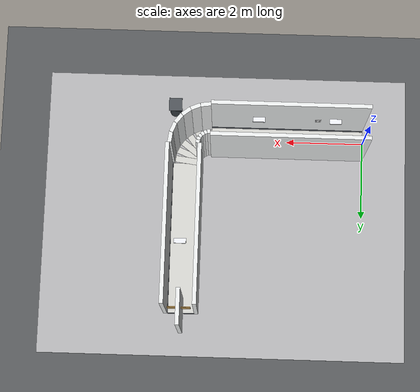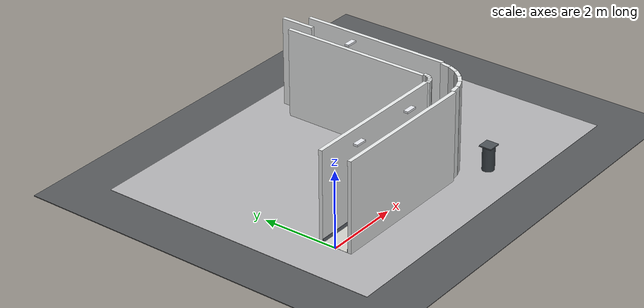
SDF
<sdf version='1.7'>
  <world name='slam_l_turn_corridor'>
    <light name='sun' type='directional'>
      <cast_shadows>1</cast_shadows>
      <pose>0 0 10 0 0 0</pose>
      <diffuse>0.75 0.75 0.75 1</diffuse>
      <specular>0.2 0.2 0.2 1</specular>
      <attenuation>
        <range>1000</range>
        <constant>0.9</constant>
        <linear>0.01</linear>
        <quadratic>0.001</quadratic>
      </attenuation>
      <direction>-0.4 0.1 -0.9</direction>
    </light>
    <light name="l_light_1" type="point">
  <pose>0.9000 0.0000 2.2800 0.0000 0.0000 0.0000</pose>
  <diffuse>1.000 0.980 0.920 1.000</diffuse>
  <specular>0.200 0.200 0.200 1.000</specular>
  <attenuation>
    <range>8</range>
    <constant>0.4</constant>
    <linear>0.2571</linear>
    <quadratic>0.0429</quadratic>
  </attenuation>
  <cast_shadows>1</cast_shadows>
</light>
    <light name="l_light_2" type="point">
  <pose>2.8000 0.0000 2.2800 0.0000 0.0000 0.0000</pose>
  <diffuse>1.000 0.980 0.920 1.000</diffuse>
  <specular>0.200 0.200 0.200 1.000</specular>
  <attenuation>
    <range>8</range>
    <constant>0.4</constant>
    <linear>0.2571</linear>
    <quadratic>0.0429</quadratic>
  </attenuation>
  <cast_shadows>1</cast_shadows>
</light>
    <light name="l_light_3" type="point">
  <pose>4.6500 1.4000 2.2800 0.0000 0.0000 0.0000</pose>
  <diffuse>1.000 0.980 0.920 1.000</diffuse>
  <specular>0.200 0.200 0.200 1.000</specular>
  <attenuation>
    <range>8</range>
    <constant>0.4</constant>
    <linear>0.2571</linear>
    <quadratic>0.0429</quadratic>
  </attenuation>
  <cast_shadows>1</cast_shadows>
</light>
    <light name="l_light_4" type="point">
  <pose>4.6500 3.5000 2.2800 0.0000 0.0000 0.0000</pose>
  <diffuse>1.000 0.980 0.920 1.000</diffuse>
  <specular>0.200 0.200 0.200 1.000</specular>
  <attenuation>
    <range>8</range>
    <constant>0.4</constant>
    <linear>0.2571</linear>
    <quadratic>0.0429</quadratic>
  </attenuation>
  <cast_shadows>1</cast_shadows>
</light>
    <gravity>0 0 -9.8</gravity>
    <physics type='ode'>
      <max_step_size>0.001</max_step_size>
      <real_time_factor>1</real_time_factor>
      <real_time_update_rate>1000</real_time_update_rate>
    </physics>
    <scene>
      <ambient>0.450 0.450 0.460 1</ambient>
      <background>0.810 0.820 0.830 1</background>
      <shadows>1</shadows>
    </scene>
    <model name="ground_plane">
  <static>1</static>
  <link name="link">
    <collision name="plane_collision">
  <pose>0.0000 0.0000 0.0000 0.0000 0.0000 0.0000</pose>
  <geometry><box><size>40.0000 40.0000 0.0200</size></box></geometry>
</collision>
<visual name="plane_visual">
  <pose>0.0000 0.0000 0.0000 0.0000 0.0000 0.0000</pose>
  <cast_shadows>1</cast_shadows>
  <geometry><box><size>40.0000 40.0000 0.0200</size></box></geometry>
  <material>
  <ambient>0.340 0.350 0.360 1.000</ambient>
  <diffuse>0.340 0.350 0.360 1.000</diffuse>
  <specular>0.080 0.080 0.080 1.000</specular>
</material>
</visual>
  </link>
</model>
    <model name="l_corridor_shell">
  <static>1</static>
  <link name="shell">
    <collision name="l_top_wall_collision">
  <pose>2.0000 0.4000 1.2000 0.0000 0.0000 0.0000</pose>
  <geometry><box><size>4.0000 0.1000 2.4000</size></box></geometry>
</collision>
<visual name="l_top_wall_visual">
  <pose>2.0000 0.4000 1.2000 0.0000 0.0000 0.0000</pose>
  <cast_shadows>1</cast_shadows>
  <geometry><box><size>4.0000 0.1000 2.4000</size></box></geometry>
  <material>
  <ambient>0.910 0.920 0.920 1.000</ambient>
  <diffuse>0.910 0.920 0.920 1.000</diffuse>
  <specular>0.080 0.080 0.080 1.000</specular>
</material>
</visual>
    <collision name="l_bottom_wall_collision">
  <pose>2.0000 -0.4000 1.2000 0.0000 0.0000 0.0000</pose>
  <geometry><box><size>4.0000 0.1000 2.4000</size></box></geometry>
</collision>
<visual name="l_bottom_wall_visual">
  <pose>2.0000 -0.4000 1.2000 0.0000 0.0000 0.0000</pose>
  <cast_shadows>1</cast_shadows>
  <geometry><box><size>4.0000 0.1000 2.4000</size></box></geometry>
  <material>
  <ambient>0.910 0.920 0.920 1.000</ambient>
  <diffuse>0.910 0.920 0.920 1.000</diffuse>
  <specular>0.080 0.080 0.080 1.000</specular>
</material>
</visual>
    <collision name="l_vertical_inner_collision">
  <pose>4.2500 2.6500 1.2000 0.0000 0.0000 1.5708</pose>
  <geometry><box><size>4.0000 0.1000 2.4000</size></box></geometry>
</collision>
<visual name="l_vertical_inner_visual">
  <pose>4.2500 2.6500 1.2000 0.0000 0.0000 1.5708</pose>
  <cast_shadows>1</cast_shadows>
  <geometry><box><size>4.0000 0.1000 2.4000</size></box></geometry>
  <material>
  <ambient>0.910 0.920 0.920 1.000</ambient>
  <diffuse>0.910 0.920 0.920 1.000</diffuse>
  <specular>0.080 0.080 0.080 1.000</specular>
</material>
</visual>
    <collision name="l_vertical_outer_collision">
  <pose>5.0500 2.6500 1.2000 0.0000 0.0000 1.5708</pose>
  <geometry><box><size>4.0000 0.1000 2.4000</size></box></geometry>
</collision>
<visual name="l_vertical_outer_visual">
  <pose>5.0500 2.6500 1.2000 0.0000 0.0000 1.5708</pose>
  <cast_shadows>1</cast_shadows>
  <geometry><box><size>4.0000 0.1000 2.4000</size></box></geometry>
  <material>
  <ambient>0.910 0.920 0.920 1.000</ambient>
  <diffuse>0.910 0.920 0.920 1.000</diffuse>
  <specular>0.080 0.080 0.080 1.000</specular>
</material>
</visual>
    <collision name="l_end_wall_collision">
  <pose>4.6500 4.7000 1.2000 0.0000 0.0000 0.0000</pose>
  <geometry><box><size>0.1000 0.9000 2.4000</size></box></geometry>
</collision>
<visual name="l_end_wall_visual">
  <pose>4.6500 4.7000 1.2000 0.0000 0.0000 0.0000</pose>
  <cast_shadows>1</cast_shadows>
  <geometry><box><size>0.1000 0.9000 2.4000</size></box></geometry>
  <material>
  <ambient>0.910 0.920 0.920 1.000</ambient>
  <diffuse>0.910 0.920 0.920 1.000</diffuse>
  <specular>0.080 0.080 0.080 1.000</specular>
</material>
</visual>
    <visual name="l_skirting_top_visual">
  <pose>2.0000 0.3460 0.0600 0.0000 0.0000 0.0000</pose>
  <cast_shadows>1</cast_shadows>
  <geometry><box><size>4.0000 0.0120 0.1200</size></box></geometry>
  <material>
  <ambient>0.400 0.420 0.450 1.000</ambient>
  <diffuse>0.400 0.420 0.450 1.000</diffuse>
  <specular>0.080 0.080 0.080 1.000</specular>
</material>
</visual>
    <visual name="l_skirting_bottom_visual">
  <pose>2.0000 -0.3460 0.0600 0.0000 0.0000 0.0000</pose>
  <cast_shadows>1</cast_shadows>
  <geometry><box><size>4.0000 0.0120 0.1200</size></box></geometry>
  <material>
  <ambient>0.400 0.420 0.450 1.000</ambient>
  <diffuse>0.400 0.420 0.450 1.000</diffuse>
  <specular>0.080 0.080 0.080 1.000</specular>
</material>
</visual>
    <visual name="l_skirting_inner_visual">
  <pose>4.3060 2.6500 0.0600 0.0000 0.0000 1.5708</pose>
  <cast_shadows>1</cast_shadows>
  <geometry><box><size>4.0000 0.0120 0.1200</size></box></geometry>
  <material>
  <ambient>0.400 0.420 0.450 1.000</ambient>
  <diffuse>0.400 0.420 0.450 1.000</diffuse>
  <specular>0.080 0.080 0.080 1.000</specular>
</material>
</visual>
    <visual name="l_skirting_outer_visual">
  <pose>4.9940 2.6500 0.0600 0.0000 0.0000 1.5708</pose>
  <cast_shadows>1</cast_shadows>
  <geometry><box><size>4.0000 0.0120 0.1200</size></box></geometry>
  <material>
  <ambient>0.400 0.420 0.450 1.000</ambient>
  <diffuse>0.400 0.420 0.450 1.000</diffuse>
  <specular>0.080 0.080 0.080 1.000</specular>
</material>
</visual>
    <visual name="l_skirting_end_visual">
  <pose>4.6500 4.6440 0.0600 0.0000 0.0000 0.0000</pose>
  <cast_shadows>1</cast_shadows>
  <geometry><box><size>0.7000 0.0120 0.1200</size></box></geometry>
  <material>
  <ambient>0.400 0.420 0.450 1.000</ambient>
  <diffuse>0.400 0.420 0.450 1.000</diffuse>
  <specular>0.080 0.080 0.080 1.000</specular>
</material>
</visual>
    <collision name="l_arc_inner_1_collision">
  <pose>4.0388 0.3551 1.2000 0.0000 0.0000 0.1309</pose>
  <geometry><box><size>0.0783 0.1000 2.4000</size></box></geometry>
</collision>
<visual name="l_arc_inner_1_visual">
  <pose>4.0388 0.3551 1.2000 0.0000 0.0000 0.1309</pose>
  <cast_shadows>1</cast_shadows>
  <geometry><box><size>0.0783 0.1000 2.4000</size></box></geometry>
  <material>
  <ambient>0.910 0.920 0.920 1.000</ambient>
  <diffuse>0.910 0.920 0.920 1.000</diffuse>
  <specular>0.080 0.080 0.080 1.000</specular>
</material>
</visual>
    <collision name="l_arc_inner_2_collision">
  <pose>4.1138 0.3752 1.2000 0.0000 0.0000 0.3927</pose>
  <geometry><box><size>0.0783 0.1000 2.4000</size></box></geometry>
</collision>
<visual name="l_arc_inner_2_visual">
  <pose>4.1138 0.3752 1.2000 0.0000 0.0000 0.3927</pose>
  <cast_shadows>1</cast_shadows>
  <geometry><box><size>0.0783 0.1000 2.4000</size></box></geometry>
  <material>
  <ambient>0.910 0.920 0.920 1.000</ambient>
  <diffuse>0.910 0.920 0.920 1.000</diffuse>
  <specular>0.080 0.080 0.080 1.000</specular>
</material>
</visual>
    <collision name="l_arc_inner_3_collision">
  <pose>4.1811 0.4140 1.2000 0.0000 0.0000 0.6545</pose>
  <geometry><box><size>0.0783 0.1000 2.4000</size></box></geometry>
</collision>
<visual name="l_arc_inner_3_visual">
  <pose>4.1811 0.4140 1.2000 0.0000 0.0000 0.6545</pose>
  <cast_shadows>1</cast_shadows>
  <geometry><box><size>0.0783 0.1000 2.4000</size></box></geometry>
  <material>
  <ambient>0.910 0.920 0.920 1.000</ambient>
  <diffuse>0.910 0.920 0.920 1.000</diffuse>
  <specular>0.080 0.080 0.080 1.000</specular>
</material>
</visual>
    <collision name="l_arc_inner_4_collision">
  <pose>4.2360 0.4689 1.2000 0.0000 0.0000 0.9163</pose>
  <geometry><box><size>0.0783 0.1000 2.4000</size></box></geometry>
</collision>
<visual name="l_arc_inner_4_visual">
  <pose>4.2360 0.4689 1.2000 0.0000 0.0000 0.9163</pose>
  <cast_shadows>1</cast_shadows>
  <geometry><box><size>0.0783 0.1000 2.4000</size></box></geometry>
  <material>
  <ambient>0.910 0.920 0.920 1.000</ambient>
  <diffuse>0.910 0.920 0.920 1.000</diffuse>
  <specular>0.080 0.080 0.080 1.000</specular>
</material>
</visual>
    <collision name="l_arc_inner_5_collision">
  <pose>4.2748 0.5362 1.2000 0.0000 0.0000 1.1781</pose>
  <geometry><box><size>0.0783 0.1000 2.4000</size></box></geometry>
</collision>
<visual name="l_arc_inner_5_visual">
  <pose>4.2748 0.5362 1.2000 0.0000 0.0000 1.1781</pose>
  <cast_shadows>1</cast_shadows>
  <geometry><box><size>0.0783 0.1000 2.4000</size></box></geometry>
  <material>
  <ambient>0.910 0.920 0.920 1.000</ambient>
  <diffuse>0.910 0.920 0.920 1.000</diffuse>
  <specular>0.080 0.080 0.080 1.000</specular>
</material>
</visual>
    <collision name="l_arc_inner_6_collision">
  <pose>4.2949 0.6112 1.2000 0.0000 0.0000 1.4399</pose>
  <geometry><box><size>0.0783 0.1000 2.4000</size></box></geometry>
</collision>
<visual name="l_arc_inner_6_visual">
  <pose>4.2949 0.6112 1.2000 0.0000 0.0000 1.4399</pose>
  <cast_shadows>1</cast_shadows>
  <geometry><box><size>0.0783 0.1000 2.4000</size></box></geometry>
  <material>
  <ambient>0.910 0.920 0.920 1.000</ambient>
  <diffuse>0.910 0.920 0.920 1.000</diffuse>
  <specular>0.080 0.080 0.080 1.000</specular>
</material>
</visual>
    <collision name="l_arc_outer_1_collision">
  <pose>4.1294 -0.3330 1.2000 0.0000 0.0000 0.1309</pose>
  <geometry><box><size>0.2611 0.1000 2.4000</size></box></geometry>
</collision>
<visual name="l_arc_outer_1_visual">
  <pose>4.1294 -0.3330 1.2000 0.0000 0.0000 0.1309</pose>
  <cast_shadows>1</cast_shadows>
  <geometry><box><size>0.2611 0.1000 2.4000</size></box></geometry>
  <material>
  <ambient>0.910 0.920 0.920 1.000</ambient>
  <diffuse>0.910 0.920 0.920 1.000</diffuse>
  <specular>0.080 0.080 0.080 1.000</specular>
</material>
</visual>
    <collision name="l_arc_outer_2_collision">
  <pose>4.3794 -0.2660 1.2000 0.0000 0.0000 0.3927</pose>
  <geometry><box><size>0.2611 0.1000 2.4000</size></box></geometry>
</collision>
<visual name="l_arc_outer_2_visual">
  <pose>4.3794 -0.2660 1.2000 0.0000 0.0000 0.3927</pose>
  <cast_shadows>1</cast_shadows>
  <geometry><box><size>0.2611 0.1000 2.4000</size></box></geometry>
  <material>
  <ambient>0.910 0.920 0.920 1.000</ambient>
  <diffuse>0.910 0.920 0.920 1.000</diffuse>
  <specular>0.080 0.080 0.080 1.000</specular>
</material>
</visual>
    <collision name="l_arc_outer_3_collision">
  <pose>4.6036 -0.1366 1.2000 0.0000 0.0000 0.6545</pose>
  <geometry><box><size>0.2611 0.1000 2.4000</size></box></geometry>
</collision>
<visual name="l_arc_outer_3_visual">
  <pose>4.6036 -0.1366 1.2000 0.0000 0.0000 0.6545</pose>
  <cast_shadows>1</cast_shadows>
  <geometry><box><size>0.2611 0.1000 2.4000</size></box></geometry>
  <material>
  <ambient>0.910 0.920 0.920 1.000</ambient>
  <diffuse>0.910 0.920 0.920 1.000</diffuse>
  <specular>0.080 0.080 0.080 1.000</specular>
</material>
</visual>
    <collision name="l_arc_outer_4_collision">
  <pose>4.7866 0.0464 1.2000 0.0000 0.0000 0.9163</pose>
  <geometry><box><size>0.2611 0.1000 2.4000</size></box></geometry>
</collision>
<visual name="l_arc_outer_4_visual">
  <pose>4.7866 0.0464 1.2000 0.0000 0.0000 0.9163</pose>
  <cast_shadows>1</cast_shadows>
  <geometry><box><size>0.2611 0.1000 2.4000</size></box></geometry>
  <material>
  <ambient>0.910 0.920 0.920 1.000</ambient>
  <diffuse>0.910 0.920 0.920 1.000</diffuse>
  <specular>0.080 0.080 0.080 1.000</specular>
</material>
</visual>
    <collision name="l_arc_outer_5_collision">
  <pose>4.9160 0.2706 1.2000 0.0000 0.0000 1.1781</pose>
  <geometry><box><size>0.2611 0.1000 2.4000</size></box></geometry>
</collision>
<visual name="l_arc_outer_5_visual">
  <pose>4.9160 0.2706 1.2000 0.0000 0.0000 1.1781</pose>
  <cast_shadows>1</cast_shadows>
  <geometry><box><size>0.2611 0.1000 2.4000</size></box></geometry>
  <material>
  <ambient>0.910 0.920 0.920 1.000</ambient>
  <diffuse>0.910 0.920 0.920 1.000</diffuse>
  <specular>0.080 0.080 0.080 1.000</specular>
</material>
</visual>
    <collision name="l_arc_outer_6_collision">
  <pose>4.9830 0.5206 1.2000 0.0000 0.0000 1.4399</pose>
  <geometry><box><size>0.2611 0.1000 2.4000</size></box></geometry>
</collision>
<visual name="l_arc_outer_6_visual">
  <pose>4.9830 0.5206 1.2000 0.0000 0.0000 1.4399</pose>
  <cast_shadows>1</cast_shadows>
  <geometry><box><size>0.2611 0.1000 2.4000</size></box></geometry>
  <material>
  <ambient>0.910 0.920 0.920 1.000</ambient>
  <diffuse>0.910 0.920 0.920 1.000</diffuse>
  <specular>0.080 0.080 0.080 1.000</specular>
</material>
</visual>
    <visual name="l_fixture_1_visual">
  <pose>0.9000 0.0000 2.3200 0.0000 0.0000 0.0000</pose>
  <cast_shadows>1</cast_shadows>
  <geometry><box><size>0.3000 0.1200 0.0500</size></box></geometry>
  <material>
  <ambient>0.920 0.930 0.950 1.000</ambient>
  <diffuse>0.920 0.930 0.950 1.000</diffuse>
  <specular>0.080 0.080 0.080 1.000</specular>
</material>
</visual>
    <visual name="l_fixture_2_visual">
  <pose>2.8000 0.0000 2.3200 0.0000 0.0000 0.0000</pose>
  <cast_shadows>1</cast_shadows>
  <geometry><box><size>0.3000 0.1200 0.0500</size></box></geometry>
  <material>
  <ambient>0.920 0.930 0.950 1.000</ambient>
  <diffuse>0.920 0.930 0.950 1.000</diffuse>
  <specular>0.080 0.080 0.080 1.000</specular>
</material>
</visual>
    <visual name="l_fixture_3_visual">
  <pose>4.6500 3.1000 2.3200 0.0000 0.0000 0.0000</pose>
  <cast_shadows>1</cast_shadows>
  <geometry><box><size>0.3000 0.1200 0.0500</size></box></geometry>
  <material>
  <ambient>0.920 0.930 0.950 1.000</ambient>
  <diffuse>0.920 0.930 0.950 1.000</diffuse>
  <specular>0.080 0.080 0.080 1.000</specular>
</material>
</visual>
    <visual name="l_fixture_4_visual">
  <pose>4.6500 3.1000 2.3200 0.0000 0.0000 0.0000</pose>
  <cast_shadows>1</cast_shadows>
  <geometry><box><size>0.3000 0.1200 0.0500</size></box></geometry>
  <material>
  <ambient>0.920 0.930 0.950 1.000</ambient>
  <diffuse>0.920 0.930 0.950 1.000</diffuse>
  <specular>0.080 0.080 0.080 1.000</specular>
</material>
</visual>
  </link>
</model>
    <model name="l_corridor_floor">
  <static>1</static>
  <link name="floor">
    <collision name="l_floor_pad_collision">
  <pose>3.6000 2.0000 0.0100 0.0000 0.0000 0.0000</pose>
  <geometry><box><size>9.5000 7.5000 0.0200</size></box></geometry>
</collision>
<visual name="l_floor_pad_visual">
  <pose>3.6000 2.0000 0.0100 0.0000 0.0000 0.0000</pose>
  <cast_shadows>1</cast_shadows>
  <geometry><box><size>9.5000 7.5000 0.0200</size></box></geometry>
  <material>
  <ambient>0.700 0.700 0.710 1.000</ambient>
  <diffuse>0.700 0.700 0.710 1.000</diffuse>
  <specular>0.080 0.080 0.080 1.000</specular>
</material>
</visual>
    <visual name="l_floor_1_visual">
  <pose>2.0000 0.0000 0.0170 0.0000 0.0000 0.0000</pose>
  <cast_shadows>1</cast_shadows>
  <geometry><box><size>4.0000 0.7000 0.0150</size></box></geometry>
  <material>
  <ambient>0.820 0.820 0.800 1.000</ambient>
  <diffuse>0.820 0.820 0.800 1.000</diffuse>
  <specular>0.080 0.080 0.080 1.000</specular>
</material>
</visual>
    <visual name="l_floor_2_visual">
  <pose>4.6500 2.6500 0.0170 0.0000 0.0000 1.5708</pose>
  <cast_shadows>1</cast_shadows>
  <geometry><box><size>4.0000 0.7000 0.0150</size></box></geometry>
  <material>
  <ambient>0.820 0.820 0.800 1.000</ambient>
  <diffuse>0.820 0.820 0.800 1.000</diffuse>
  <specular>0.080 0.080 0.080 1.000</specular>
</material>
</visual>
    <visual name="l_arc_floor_1_visual">
  <pose>4.0841 0.0111 0.0170 0.0000 0.0000 0.1309</pose>
  <cast_shadows>1</cast_shadows>
  <geometry><box><size>0.1697 0.7000 0.0150</size></box></geometry>
  <material>
  <ambient>0.820 0.820 0.800 1.000</ambient>
  <diffuse>0.820 0.820 0.800 1.000</diffuse>
  <specular>0.080 0.080 0.080 1.000</specular>
</material>
</visual>
    <visual name="l_arc_floor_2_visual">
  <pose>4.2466 0.0546 0.0170 0.0000 0.0000 0.3927</pose>
  <cast_shadows>1</cast_shadows>
  <geometry><box><size>0.1697 0.7000 0.0150</size></box></geometry>
  <material>
  <ambient>0.820 0.820 0.800 1.000</ambient>
  <diffuse>0.820 0.820 0.800 1.000</diffuse>
  <specular>0.080 0.080 0.080 1.000</specular>
</material>
</visual>
    <visual name="l_arc_floor_3_visual">
  <pose>4.3923 0.1387 0.0170 0.0000 0.0000 0.6545</pose>
  <cast_shadows>1</cast_shadows>
  <geometry><box><size>0.1697 0.7000 0.0150</size></box></geometry>
  <material>
  <ambient>0.820 0.820 0.800 1.000</ambient>
  <diffuse>0.820 0.820 0.800 1.000</diffuse>
  <specular>0.080 0.080 0.080 1.000</specular>
</material>
</visual>
    <visual name="l_arc_floor_4_visual">
  <pose>4.5113 0.2577 0.0170 0.0000 0.0000 0.9163</pose>
  <cast_shadows>1</cast_shadows>
  <geometry><box><size>0.1697 0.7000 0.0150</size></box></geometry>
  <material>
  <ambient>0.820 0.820 0.800 1.000</ambient>
  <diffuse>0.820 0.820 0.800 1.000</diffuse>
  <specular>0.080 0.080 0.080 1.000</specular>
</material>
</visual>
    <visual name="l_arc_floor_5_visual">
  <pose>4.5954 0.4034 0.0170 0.0000 0.0000 1.1781</pose>
  <cast_shadows>1</cast_shadows>
  <geometry><box><size>0.1697 0.7000 0.0150</size></box></geometry>
  <material>
  <ambient>0.820 0.820 0.800 1.000</ambient>
  <diffuse>0.820 0.820 0.800 1.000</diffuse>
  <specular>0.080 0.080 0.080 1.000</specular>
</material>
</visual>
    <visual name="l_arc_floor_6_visual">
  <pose>4.6389 0.5659 0.0170 0.0000 0.0000 1.4399</pose>
  <cast_shadows>1</cast_shadows>
  <geometry><box><size>0.1697 0.7000 0.0150</size></box></geometry>
  <material>
  <ambient>0.820 0.820 0.800 1.000</ambient>
  <diffuse>0.820 0.820 0.800 1.000</diffuse>
  <specular>0.080 0.080 0.080 1.000</specular>
</material>
</visual>
  </link>
</model>
    <model name="l_corridor_features">
  <static>1</static>
  <link name="features">
    <collision name="l_trash_can_collision">
  <pose>4.9600 -0.7800 0.3300 0.0000 0.0000 0.0000</pose>
  <geometry><cylinder><radius>0.1600</radius><length>0.6600</length></cylinder></geometry>
</collision>
<visual name="l_trash_can_visual">
  <pose>4.9600 -0.7800 0.3300 0.0000 0.0000 0.0000</pose>
  <geometry><cylinder><radius>0.1600</radius><length>0.6600</length></cylinder></geometry>
  <material>
  <ambient>0.220 0.250 0.270 1.000</ambient>
  <diffuse>0.220 0.250 0.270 1.000</diffuse>
  <specular>0.080 0.080 0.080 1.000</specular>
</material>
</visual>
    <visual name="l_trash_lid_visual">
  <pose>4.9600 -0.7800 0.6700 0.0000 0.0000 0.0000</pose>
  <cast_shadows>1</cast_shadows>
  <geometry><box><size>0.3400 0.3400 0.0300</size></box></geometry>
  <material>
  <ambient>0.300 0.320 0.340 1.000</ambient>
  <diffuse>0.300 0.320 0.340 1.000</diffuse>
  <specular>0.080 0.080 0.080 1.000</specular>
</material>
</visual>
    <visual name="switch_panel_back_visual">
  <pose>1.2500 -0.3440 1.0800 0.0000 0.0000 0.0000</pose>
  <cast_shadows>1</cast_shadows>
  <geometry><box><size>0.1400 0.0100 0.2000</size></box></geometry>
  <material>
  <ambient>0.960 0.960 0.960 1.000</ambient>
  <diffuse>0.960 0.960 0.960 1.000</diffuse>
  <specular>0.080 0.080 0.080 1.000</specular>
</material>
</visual>
    <visual name="switch_panel_button_1_visual">
  <pose>1.2100 -0.3380 1.0800 0.0000 0.0000 0.0000</pose>
  <cast_shadows>1</cast_shadows>
  <geometry><box><size>0.0300 0.0120 0.0700</size></box></geometry>
  <material>
  <ambient>0.820 0.820 0.840 1.000</ambient>
  <diffuse>0.820 0.820 0.840 1.000</diffuse>
  <specular>0.080 0.080 0.080 1.000</specular>
</material>
</visual>
    <visual name="switch_panel_button_2_visual">
  <pose>1.2900 -0.3380 1.0800 0.0000 0.0000 0.0000</pose>
  <cast_shadows>1</cast_shadows>
  <geometry><box><size>0.0300 0.0120 0.0700</size></box></geometry>
  <material>
  <ambient>0.820 0.820 0.840 1.000</ambient>
  <diffuse>0.820 0.820 0.840 1.000</diffuse>
  <specular>0.080 0.080 0.080 1.000</specular>
</material>
</visual>
    <visual name="picture_frame_outer_visual">
  <pose>4.6500 4.6440 1.4800 0.0000 0.0000 0.0000</pose>
  <cast_shadows>1</cast_shadows>
  <geometry><box><size>0.5800 0.0200 0.3800</size></box></geometry>
  <material>
  <ambient>0.710 0.560 0.300 1.000</ambient>
  <diffuse>0.710 0.560 0.300 1.000</diffuse>
  <specular>0.080 0.080 0.080 1.000</specular>
</material>
</visual>
    <visual name="picture_frame_inner_visual">
  <pose>4.6500 4.6360 1.4800 0.0000 0.0000 0.0000</pose>
  <cast_shadows>1</cast_shadows>
  <geometry><box><size>0.4800 0.0100 0.2800</size></box></geometry>
  <material>
  <ambient>0.600 0.720 0.830 1.000</ambient>
  <diffuse>0.600 0.720 0.830 1.000</diffuse>
  <specular>0.080 0.080 0.080 1.000</specular>
</material>
</visual>
    <visual name="entrance_mat_visual">
  <pose>0.5500 0.0000 0.0180 0.0000 0.0000 0.0000</pose>
  <cast_shadows>1</cast_shadows>
  <geometry><box><size>0.7000 0.4200 0.0100</size></box></geometry>
  <material>
  <ambient>0.370 0.280 0.220 1.000</ambient>
  <diffuse>0.370 0.280 0.220 1.000</diffuse>
  <specular>0.080 0.080 0.080 1.000</specular>
</material>
</visual>
    <visual name="l_inner_tag_plaque_visual">
  <pose>3.6600 0.3440 1.2800 0.0000 0.0000 0.0000</pose>
  <cast_shadows>1</cast_shadows>
  <geometry><box><size>0.1800 0.0120 0.1800</size></box></geometry>
  <material>
  <ambient>0.960 0.960 0.960 1.000</ambient>
  <diffuse>0.960 0.960 0.960 1.000</diffuse>
  <specular>0.080 0.080 0.080 1.000</specular>
</material>
</visual>
    <visual name="l_inner_tag_top_visual">
  <pose>3.6600 0.3440 1.3538 0.0000 0.0000 0.0000</pose>
  <cast_shadows>1</cast_shadows>
  <geometry><box><size>0.1800 0.0132 0.0324</size></box></geometry>
  <material>
  <ambient>0.050 0.050 0.050 1.000</ambient>
  <diffuse>0.050 0.050 0.050 1.000</diffuse>
  <specular>0.080 0.080 0.080 1.000</specular>
</material>
</visual>
    <visual name="l_inner_tag_bottom_visual">
  <pose>3.6600 0.3440 1.2062 0.0000 0.0000 0.0000</pose>
  <cast_shadows>1</cast_shadows>
  <geometry><box><size>0.1800 0.0132 0.0324</size></box></geometry>
  <material>
  <ambient>0.050 0.050 0.050 1.000</ambient>
  <diffuse>0.050 0.050 0.050 1.000</diffuse>
  <specular>0.080 0.080 0.080 1.000</specular>
</material>
</visual>
    <visual name="l_inner_tag_left_visual">
  <pose>3.5862 0.3440 1.2800 0.0000 0.0000 0.0000</pose>
  <cast_shadows>1</cast_shadows>
  <geometry><box><size>0.0324 0.0132 0.1800</size></box></geometry>
  <material>
  <ambient>0.050 0.050 0.050 1.000</ambient>
  <diffuse>0.050 0.050 0.050 1.000</diffuse>
  <specular>0.080 0.080 0.080 1.000</specular>
</material>
</visual>
    <visual name="l_inner_tag_right_visual">
  <pose>3.7338 0.3440 1.2800 0.0000 0.0000 0.0000</pose>
  <cast_shadows>1</cast_shadows>
  <geometry><box><size>0.0324 0.0132 0.1800</size></box></geometry>
  <material>
  <ambient>0.050 0.050 0.050 1.000</ambient>
  <diffuse>0.050 0.050 0.050 1.000</diffuse>
  <specular>0.080 0.080 0.080 1.000</specular>
</material>
</visual>
    <visual name="l_inner_tag_cell_1_visual">
  <pose>3.6240 0.3440 1.2440 0.0000 0.0000 0.0000</pose>
  <cast_shadows>1</cast_shadows>
  <geometry><box><size>0.0396 0.0132 0.0396</size></box></geometry>
  <material>
  <ambient>0.050 0.050 0.050 1.000</ambient>
  <diffuse>0.050 0.050 0.050 1.000</diffuse>
  <specular>0.080 0.080 0.080 1.000</specular>
</material>
</visual>
    <visual name="l_inner_tag_cell_2_visual">
  <pose>3.6960 0.3440 1.3160 0.0000 0.0000 0.0000</pose>
  <cast_shadows>1</cast_shadows>
  <geometry><box><size>0.0396 0.0132 0.0396</size></box></geometry>
  <material>
  <ambient>0.050 0.050 0.050 1.000</ambient>
  <diffuse>0.050 0.050 0.050 1.000</diffuse>
  <specular>0.080 0.080 0.080 1.000</specular>
</material>
</visual>
    <visual name="l_inner_tag_cell_3_visual">
  <pose>3.6600 0.3440 1.2800 0.0000 0.0000 0.0000</pose>
  <cast_shadows>1</cast_shadows>
  <geometry><box><size>0.0396 0.0132 0.0396</size></box></geometry>
  <material>
  <ambient>0.050 0.050 0.050 1.000</ambient>
  <diffuse>0.050 0.050 0.050 1.000</diffuse>
  <specular>0.080 0.080 0.080 1.000</specular>
</material>
</visual>
  </link>
</model>
  </world>
</sdf>
